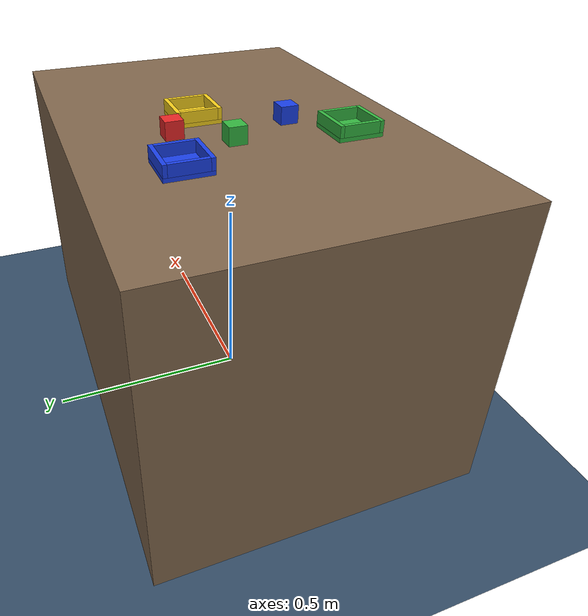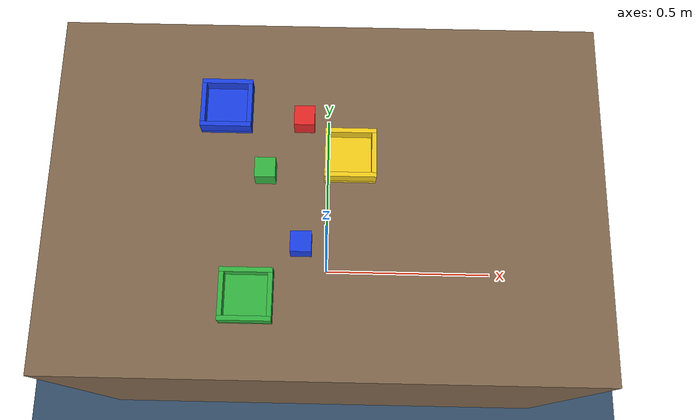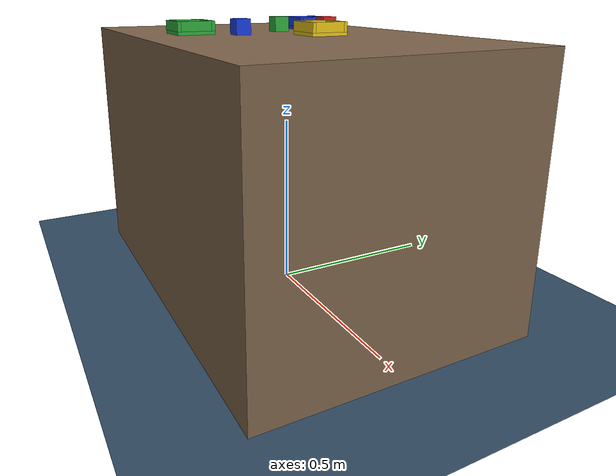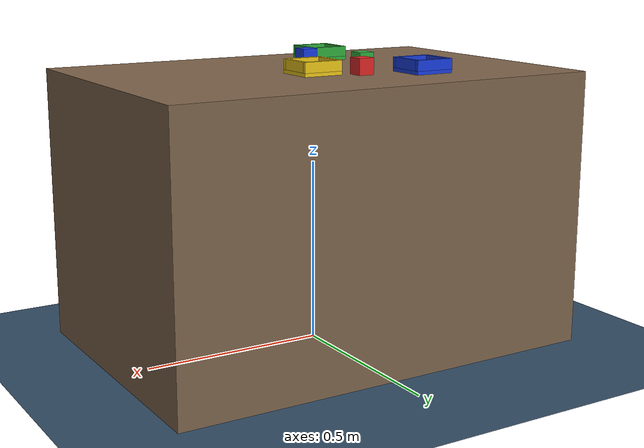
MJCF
<mujoco model="piper_tabletop">
  <visual>
    <headlight diffuse="0.8 0.8 0.8" ambient="0.3 0.3 0.3"/>
  </visual>
  <asset>
    <texture name="sky" type="skybox" builtin="gradient" rgb1="0.3 0.5 0.7" rgb2="0 0 0" width="512" height="3072"/>
  </asset>
  <worldbody>
    <light pos="0 0 2" dir="0 0 -1" directional="true"/>
    <geom name="floor" type="plane" size="0 0 0.05" rgba="0.2 0.3 0.4 1"/>
    <geom name="table" type="box" pos="0 0 0.375" size="0.6 0.4 0.375" rgba="0.5 0.4 0.3 1"/>
    <body name="piper_mount" pos="-0.3 0 0.75" quat="1 0 0 0"/>
    <body name="blue_block" pos="-0.05 -0.12 0.773">
      <freejoint/>
      <geom type="box" size="0.022 0.022 0.022" mass="0.04" rgba="0.1 0.25 0.9 1"/>
    </body>
    <body name="green_block" pos="-0.13 0.04 0.773">
      <freejoint/>
      <geom type="box" size="0.022 0.022 0.022" mass="0.04" rgba="0.2 0.7 0.25 1"/>
    </body>
    <body name="red_block" pos="-0.05 0.16 0.773">
      <freejoint/>
      <geom type="box" size="0.022 0.022 0.022" mass="0.04" rgba="0.9 0.15 0.15 1"/>
    </body>
    <body name="yellow_bowl" pos="0.05 0.08 0.75">
      <geom name="yellow_bowl_base" type="box" pos="0 0 0.005" size="0.055 0.055 0.005" rgba="0.95 0.8 0.1 1"/>
      <geom name="yellow_bowl_front" type="box" pos="0 -0.05 0.024" size="0.055 0.005 0.014" rgba="0.95 0.8 0.1 1"/>
      <geom name="yellow_bowl_back" type="box" pos="0 0.05 0.024" size="0.055 0.005 0.014" rgba="0.95 0.8 0.1 1"/>
      <geom name="yellow_bowl_left" type="box" pos="-0.05 0 0.024" size="0.005 0.045 0.014" rgba="0.95 0.8 0.1 1"/>
      <geom name="yellow_bowl_right" type="box" pos="0.05 0 0.024" size="0.005 0.045 0.014" rgba="0.95 0.8 0.1 1"/>
    </body>
    <body name="blue_bowl" pos="-0.22 0.19 0.75">
      <geom type="box" pos="0 0 0.005" size="0.055 0.055 0.005" rgba="0.1 0.25 0.9 1"/>
      <geom type="box" pos="0 -0.05 0.024" size="0.055 0.005 0.014" rgba="0.1 0.25 0.9 1"/>
      <geom type="box" pos="0 0.05 0.024" size="0.055 0.005 0.014" rgba="0.1 0.25 0.9 1"/>
      <geom type="box" pos="-0.05 0 0.024" size="0.005 0.045 0.014" rgba="0.1 0.25 0.9 1"/>
      <geom type="box" pos="0.05 0 0.024" size="0.005 0.045 0.014" rgba="0.1 0.25 0.9 1"/>
    </body>
    <body name="green_bowl" pos="-0.16 -0.23 0.75">
      <geom type="box" pos="0 0 0.005" size="0.055 0.055 0.005" rgba="0.2 0.7 0.25 1"/>
      <geom type="box" pos="0 -0.05 0.024" size="0.055 0.005 0.014" rgba="0.2 0.7 0.25 1"/>
      <geom type="box" pos="0 0.05 0.024" size="0.055 0.005 0.014" rgba="0.2 0.7 0.25 1"/>
      <geom type="box" pos="-0.05 0 0.024" size="0.005 0.045 0.014" rgba="0.2 0.7 0.25 1"/>
      <geom type="box" pos="0.05 0 0.024" size="0.005 0.045 0.014" rgba="0.2 0.7 0.25 1"/>
    </body>
  </worldbody>
  <equality>
    <weld name="blue_block_grasp" body1="gripper_base" body2="blue_block" active="false"/>
    <weld name="green_block_grasp" body1="gripper_base" body2="green_block" active="false"/>
    <weld name="red_block_grasp" body1="gripper_base" body2="red_block" active="false"/>
  </equality>
</mujoco>
